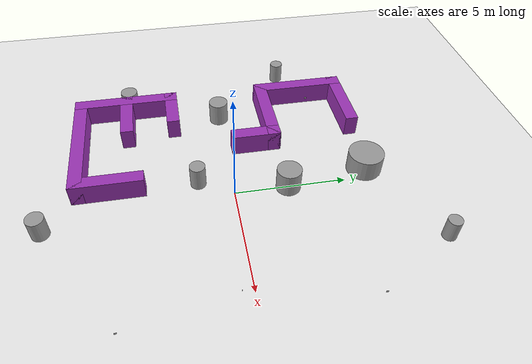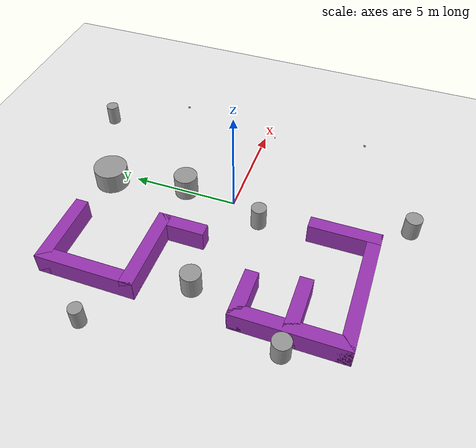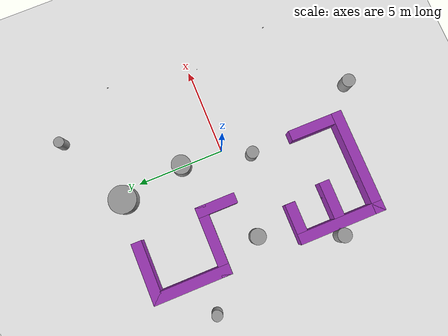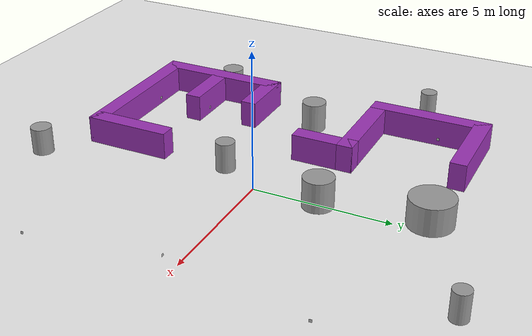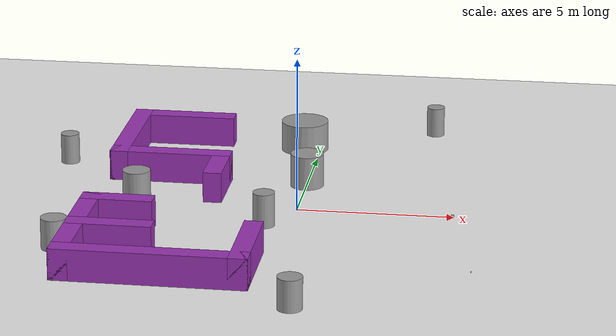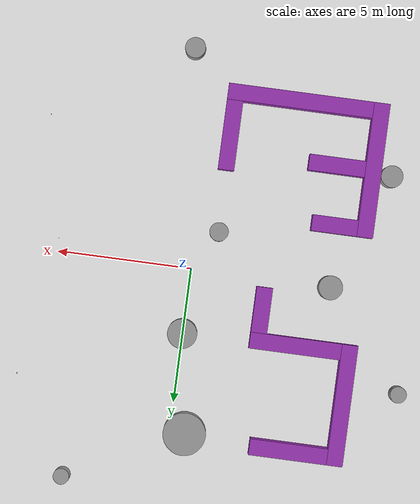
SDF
<sdf version="1.7">
 <world name="default">
  <light name="sun" type="directional">
   <pose>0 0 10 0 -0 0</pose>
   <diffuse>0.8 0.8 0.8 1</diffuse>
   <specular>0.2 0.2 0.2 1</specular>
   <attenuation>
    <range>1000</range>
    <constant>0.9</constant>
    <linear>0.01</linear>
    <quadratic>0.001</quadratic>
   </attenuation>
   <direction>-0.5 0.1 -0.9</direction>
   <spot><inner_angle>0</inner_angle><outer_angle>0</outer_angle><falloff>0</falloff></spot>
  </light>
  <model name="ground_plane">
   <static>1</static>
   <link name="link">
    <collision name="collision">
     <geometry><plane><normal>0 0 1</normal><size>100 100</size></plane></geometry>
     <surface>
      <contact><collide_bitmask>65535</collide_bitmask></contact>
      <friction><ode><mu>100</mu><mu2>50</mu2></ode></friction>
     </surface>
    </collision>
    <visual name="visual">
     <cast_shadows>0</cast_shadows>
     <geometry><plane><normal>0 0 1</normal><size>100 100</size></plane></geometry>
     <material>
      <script><uri>file://media/materials/scripts/gazebo.material</uri><name>Gazebo/White</name></script>
     </material>
    </visual>
   </link>
  </model>
  <gravity>0 0 -9.8</gravity>
  <magnetic_field>6e-06 2.3e-05 -4.2e-05</magnetic_field>
  <atmosphere type="adiabatic"/>
  <physics type="ode">
   <max_step_size>0.001</max_step_size>
   <real_time_factor>1</real_time_factor>
   <real_time_update_rate>1000</real_time_update_rate>
  </physics>
  <scene><ambient>0.4 0.4 0.4 1</ambient><background>0.7 0.7 0.7 1</background><shadows>1</shadows></scene>
  <spherical_coordinates>
   <surface_model>EARTH_WGS84</surface_model>
   <latitude_deg>0</latitude_deg>
   <longitude_deg>0</longitude_deg>
   <elevation>0</elevation>
   <heading_deg>0</heading_deg>
  </spherical_coordinates>
  <model name="north_west_maze">
   <static>1</static>
   <link name="link">
    <collision name="segment_0">
     <pose>-6.2 4.25 0.5 0 -0 0</pose>
     <geometry><box><size>0.6 4.5 1</size></box></geometry>
    </collision>
    <visual name="segment_0_visual">
     <pose>-6.2 4.25 0.5 0 -0 0</pose>
     <geometry><box><size>0.6 4.5 1</size></box></geometry>
     <material>
      <script><uri>file://media/materials/scripts/gazebo.material</uri><name>Gazebo/Purple</name></script>
     </material>
    </visual>
    <collision name="segment_1">
     <pose>-4.75 6.2 0.5 0 -0 0</pose>
     <geometry><box><size>3.5 0.6 1</size></box></geometry>
    </collision>
    <visual name="segment_1_visual">
     <pose>-4.75 6.2 0.5 0 -0 0</pose>
     <geometry><box><size>3.5 0.6 1</size></box></geometry>
     <material>
      <script><uri>file://media/materials/scripts/gazebo.material</uri><name>Gazebo/Purple</name></script>
     </material>
    </visual>
    <collision name="segment_2">
     <pose>-4.5 2.3 0.5 0 -0 0</pose>
     <geometry><box><size>4 0.6 1</size></box></geometry>
    </collision>
    <visual name="segment_2_visual">
     <pose>-4.5 2.3 0.5 0 -0 0</pose>
     <geometry><box><size>4 0.6 1</size></box></geometry>
     <material>
      <script><uri>file://media/materials/scripts/gazebo.material</uri><name>Gazebo/Purple</name></script>
     </material>
    </visual>
    <collision name="segment_3">
     <pose>-2.8 1.45 0.5 0 -0 0</pose>
     <geometry><box><size>0.6 2.3 1</size></box></geometry>
    </collision>
    <visual name="segment_3_visual">
     <pose>-2.8 1.45 0.5 0 -0 0</pose>
     <geometry><box><size>0.6 2.3 1</size></box></geometry>
     <material>
      <script><uri>file://media/materials/scripts/gazebo.material</uri><name>Gazebo/Purple</name></script>
     </material>
    </visual>
   </link>
  </model>
  <model name="south_west_maze">
   <static>1</static>
   <link name="link">
    <collision name="segment_0">
     <pose>-6.2 -4.5 0.5 0 -0 0</pose>
     <geometry><box><size>0.6 5 1</size></box></geometry>
    </collision>
    <visual name="segment_0_visual">
     <pose>-6.2 -4.5 0.5 0 -0 0</pose>
     <geometry><box><size>0.6 5 1</size></box></geometry>
     <material>
      <script><uri>file://media/materials/scripts/gazebo.material</uri><name>Gazebo/Purple</name></script>
     </material>
    </visual>
    <collision name="segment_1">
     <pose>-3.5 -6.7 0.5 0 -0 0</pose>
     <geometry><box><size>6 0.6 1</size></box></geometry>
    </collision>
    <visual name="segment_1_visual">
     <pose>-3.5 -6.7 0.5 0 -0 0</pose>
     <geometry><box><size>6 0.6 1</size></box></geometry>
     <material>
      <script><uri>file://media/materials/scripts/gazebo.material</uri><name>Gazebo/Purple</name></script>
     </material>
    </visual>
    <collision name="segment_2">
     <pose>-0.8 -5.4 0.5 0 -0 0</pose>
     <geometry><box><size>0.6 3.2 1</size></box></geometry>
    </collision>
    <visual name="segment_2_visual">
     <pose>-0.8 -5.4 0.5 0 -0 0</pose>
     <geometry><box><size>0.6 3.2 1</size></box></geometry>
     <material>
      <script><uri>file://media/materials/scripts/gazebo.material</uri><name>Gazebo/Purple</name></script>
     </material>
    </visual>
    <collision name="segment_3">
     <pose>-5.15 -4.5 0.5 0 -0 0</pose>
     <geometry><box><size>2.7 0.6 1</size></box></geometry>
    </collision>
    <visual name="segment_3_visual">
     <pose>-5.15 -4.5 0.5 0 -0 0</pose>
     <geometry><box><size>2.7 0.6 1</size></box></geometry>
     <material>
      <script><uri>file://media/materials/scripts/gazebo.material</uri><name>Gazebo/Purple</name></script>
     </material>
    </visual>
    <collision name="segment_4">
     <pose>-5.35 -2.3 0.5 0 -0 0</pose>
     <geometry><box><size>2.3 0.6 1</size></box></geometry>
    </collision>
    <visual name="segment_4_visual">
     <pose>-5.35 -2.3 0.5 0 -0 0</pose>
     <geometry><box><size>2.3 0.6 1</size></box></geometry>
     <material>
      <script><uri>file://media/materials/scripts/gazebo.material</uri><name>Gazebo/Purple</name></script>
     </material>
    </visual>
   </link>
  </model>
  <model name="west_cylinder">
   <static>1</static>
   <pose>-5.2 0 0.55 0 -0 0</pose>
   <link name="link">
    <collision name="collision">
     <geometry><cylinder><radius>0.45</radius><length>1.1</length></cylinder></geometry>
    </collision>
    <visual name="visual">
     <geometry><cylinder><radius>0.45</radius><length>1.1</length></cylinder></geometry>
     <material>
      <script><uri>file://media/materials/scripts/gazebo.material</uri><name>Gazebo/Grey</name></script>
     </material>
    </visual>
   </link>
  </model>
  <model name="south_centre_cylinder">
   <static>1</static>
   <pose>-0.85 -1.5 0.55 0 -0 0</pose>
   <link name="link">
    <collision name="collision">
     <geometry><cylinder><radius>0.35</radius><length>1.1</length></cylinder></geometry>
    </collision>
    <visual name="visual">
     <geometry><cylinder><radius>0.35</radius><length>1.1</length></cylinder></geometry>
     <material>
      <script><uri>file://media/materials/scripts/gazebo.material</uri><name>Gazebo/Grey</name></script>
     </material>
    </visual>
   </link>
  </model>
  <model name="north_centre_cylinder">
   <static>1</static>
   <pose>0 2.4 0.55 0 -0 0</pose>
   <link name="link">
    <collision name="collision">
     <geometry><cylinder><radius>0.55</radius><length>1.1</length></cylinder></geometry>
    </collision>
    <visual name="visual">
     <geometry><cylinder><radius>0.55</radius><length>1.1</length></cylinder></geometry>
     <material>
      <script><uri>file://media/materials/scripts/gazebo.material</uri><name>Gazebo/Grey</name></script>
     </material>
    </visual>
   </link>
  </model>
  <model name="aruco_6x6_100mm_0">
   <static>1</static>
   <pose>-4.5 -6.4 0 0 0 -1.5708</pose>
   <link name="link">
    <visual name="marker">
     <pose>-0.0015 0 0.24 3.14159 1.57079 3.14159</pose>
     <geometry><box><size>0.1 0.1 0.001</size></box></geometry>
     <material>
      <script>
       <uri>file://media/materials/scripts</uri>
       <uri>file://media/materials/textures</uri>
       <name>aruco_6x6_100mm_0</name>
      </script>
     </material>
    </visual>
   </link>
  </model>
  <model name="aruco_6x6_100mm_2">
   <static>1</static>
   <pose>-4.6 -4.2 0 0 0 -1.5708</pose>
   <link name="link">
    <visual name="marker">
     <pose>-0.0015 0 0.24 3.14159 1.57079 3.14159</pose>
     <geometry><box><size>0.1 0.1 0.001</size></box></geometry>
     <material>
      <script>
       <uri>file://media/materials/scripts</uri>
       <uri>file://media/materials/textures</uri>
       <name>aruco_6x6_100mm_2</name>
      </script>
     </material>
    </visual>
   </link>
  </model>
  <model name="aruco_6x6_100mm_42">
   <static>1</static>
   <pose>5.9 -5.05 0 0 -0 0</pose>
   <link name="link">
    <visual name="marker">
     <pose>-0.0015 0 0.24 3.14159 1.57079 3.14159</pose>
     <geometry><box><size>0.1 0.1 0.001</size></box></geometry>
     <material>
      <script>
       <uri>file://media/materials/scripts</uri>
       <uri>file://media/materials/textures</uri>
       <name>aruco_6x6_100mm_42</name>
      </script>
     </material>
    </visual>
   </link>
  </model>
  <model name="aruco_6x6_100mm_51">
   <static>1</static>
   <pose>-5.9 4.7 0 0 0 -3.14159</pose>
   <link name="link">
    <visual name="marker">
     <pose>-0.0015 0 0.24 3.14159 1.57079 3.14159</pose>
     <geometry><box><size>0.1 0.1 0.001</size></box></geometry>
     <material>
      <script>
       <uri>file://media/materials/scripts</uri>
       <uri>file://media/materials/textures</uri>
       <name>aruco_6x6_100mm_51</name>
      </script>
     </material>
    </visual>
   </link>
  </model>
  <model name="aruco_6x6_100mm_59">
   <static>1</static>
   <pose>5 -0.5 0 0 -0 1.5708</pose>
   <link name="link">
    <visual name="marker">
     <pose>-0.0015 0 0.24 3.14159 1.57079 3.14159</pose>
     <geometry><box><size>0.1 0.1 0.001</size></box></geometry>
     <material>
      <script>
       <uri>file://media/materials/scripts</uri>
       <uri>file://media/materials/textures</uri>
       <name>aruco_6x6_100mm_59</name>
      </script>
     </material>
    </visual>
   </link>
  </model>
  <model name="aruco_6x6_100mm_100">
   <static>1</static>
   <pose>5.9 4.7 0 0 -0 0</pose>
   <link name="link">
    <visual name="marker">
     <pose>-0.0015 0 0.24 3.14159 1.57079 3.14159</pose>
     <geometry><box><size>0.1 0.1 0.001</size></box></geometry>
     <material>
      <script>
       <uri>file://media/materials/scripts</uri>
       <uri>file://media/materials/textures</uri>
       <name>aruco_6x6_100mm_100</name>
      </script>
     </material>
    </visual>
   </link>
  </model>
  <audio><device>default</device></audio>
  <model name="unit_cylinder">
   <pose>-0.563138 6.06454 0.499995 -6e-06 6e-06 0</pose>
   <link name="link">
    <inertial>
     <mass>1</mass>
     <inertia><ixx>0.145833</ixx><ixy>0</ixy><ixz>0</ixz><iyy>0.145833</iyy><iyz>0</iyz><izz>0.125</izz></inertia>
    </inertial>
    <collision name="collision">
     <geometry><cylinder><radius>0.79483</radius><length>1</length></cylinder></geometry>
    </collision>
    <visual name="visual">
     <geometry><cylinder><radius>0.79483</radius><length>1</length></cylinder></geometry>
     <material>
      <script><name>Gazebo/Grey</name><uri>file://media/materials/scripts/gazebo.material</uri></script>
     </material>
    </visual>
   </link>
  </model>
  <model name="unit_cylinder_0">
   <pose>3.73293 8.20217 0.499999 1e-06 -3e-06 0</pose>
   <link name="link">
    <inertial>
     <mass>1</mass>
     <inertia><ixx>0.145833</ixx><ixy>0</ixy><ixz>0</ixz><iyy>0.145833</iyy><iyz>0</iyz><izz>0.125</izz></inertia>
    </inertial>
    <collision name="collision">
     <geometry><cylinder><radius>0.297832</radius><length>1</length></cylinder></geometry>
    </collision>
    <visual name="visual">
     <geometry><cylinder><radius>0.297832</radius><length>1</length></cylinder></geometry>
     <material>
      <script><name>Gazebo/Grey</name><uri>file://media/materials/scripts/gazebo.material</uri></script>
     </material>
    </visual>
   </link>
  </model>
  <model name="unit_cylinder_1">
   <pose>-8.19374 3.58798 0.499993 -1e-06 -1e-06 0</pose>
   <link name="link">
    <inertial>
     <mass>1</mass>
     <inertia><ixx>0.145833</ixx><ixy>0</ixy><ixz>0</ixz><iyy>0.145833</iyy><iyz>0</iyz><izz>0.125</izz></inertia>
    </inertial>
    <collision name="collision">
     <geometry><cylinder><radius>0.306256</radius><length>1</length></cylinder></geometry>
    </collision>
    <visual name="visual">
     <geometry><cylinder><radius>0.306256</radius><length>1</length></cylinder></geometry>
     <material>
      <script><name>Gazebo/Grey</name><uri>file://media/materials/scripts/gazebo.material</uri></script>
     </material>
    </visual>
   </link>
  </model>
  <model name="unit_cylinder_2">
   <pose>-6.90735 -4.36397 0.5 0 -0 0</pose>
   <link name="link">
    <inertial>
     <mass>1</mass>
     <inertia><ixx>0.145833</ixx><ixy>0</ixy><ixz>0</ixz><iyy>0.145833</iyy><iyz>0</iyz><izz>0.125</izz></inertia>
    </inertial>
    <collision name="collision">
     <geometry><cylinder><radius>0.40734</radius><length>1</length></cylinder></geometry>
    </collision>
    <visual name="visual">
     <geometry><cylinder><radius>0.40734</radius><length>1</length></cylinder></geometry>
     <material>
      <script><name>Gazebo/Grey</name><uri>file://media/materials/scripts/gazebo.material</uri></script>
     </material>
    </visual>
   </link>
  </model>
  <model name="unit_cylinder_3">
   <pose>0.902581 -8.11792 0.499993 -1e-06 1e-06 -3.1e-05</pose>
   <link name="link">
    <inertial>
     <mass>1</mass>
     <inertia><ixx>0.145833</ixx><ixy>0</ixy><ixz>0</ixz><iyy>0.145833</iyy><iyz>0</iyz><izz>0.125</izz></inertia>
    </inertial>
    <collision name="collision">
     <geometry><cylinder><radius>0.382068</radius><length>1</length></cylinder></geometry>
    </collision>
    <visual name="visual">
     <geometry><cylinder><radius>0.382068</radius><length>1</length></cylinder></geometry>
     <material>
      <script><name>Gazebo/Grey</name><uri>file://media/materials/scripts/gazebo.material</uri></script>
     </material>
    </visual>
   </link>
  </model>
 </world>
</sdf>
